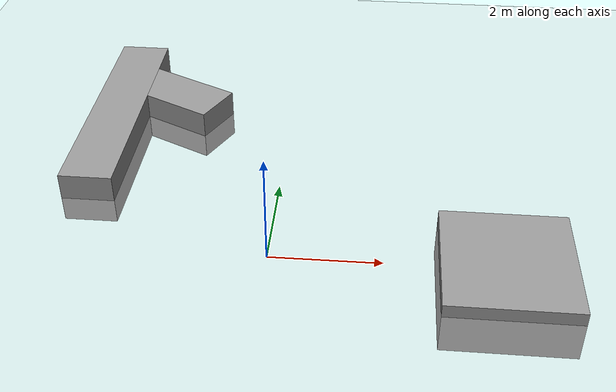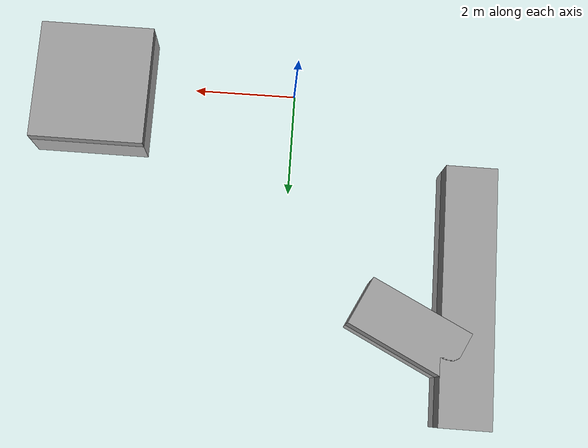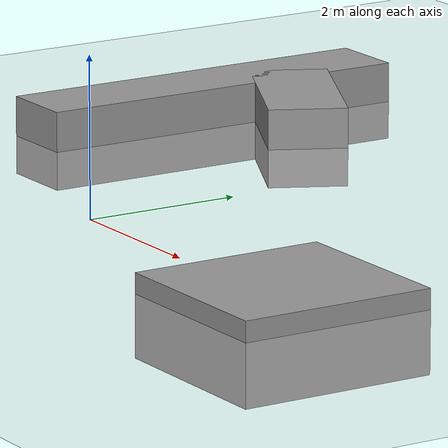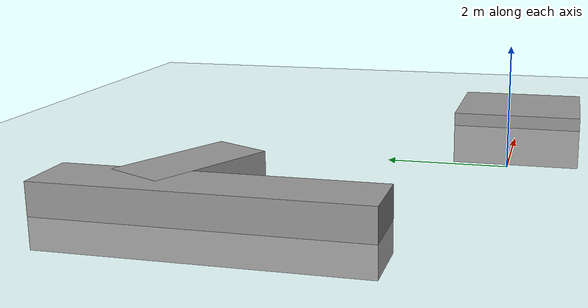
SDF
<sdf version="1.7">
 <world name="default">
  <scene><ambient>0.4 0.4 0.4 1</ambient><background>0.7 0.7 0.7 1</background><shadows>1</shadows></scene>
  <light name="sun" type="directional">
   <pose>0 0 10 0 -0 0</pose>
   <diffuse>0.8 0.8 0.8 1</diffuse>
   <specular>0.2 0.2 0.2 1</specular>
   <attenuation>
    <range>1000</range>
    <constant>0.9</constant>
    <linear>0.01</linear>
    <quadratic>0.001</quadratic>
   </attenuation>
   <direction>-0.5 0.1 -0.9</direction>
   <spot><inner_angle>0</inner_angle><outer_angle>0</outer_angle><falloff>0</falloff></spot>
  </light>
  <model name="ground_plane">
   <static>1</static>
   <link name="link">
    <collision name="collision">
     <geometry><plane><normal>0 0 1</normal><size>100 100</size></plane></geometry>
     <surface>
      <contact><collide_bitmask>65535</collide_bitmask></contact>
      <friction><ode><mu>100</mu><mu2>50</mu2></ode></friction>
     </surface>
    </collision>
    <visual name="visual">
     <cast_shadows>0</cast_shadows>
     <geometry><plane><normal>0 0 1</normal><size>100 100</size></plane></geometry>
     <material>
      <script><uri>file://media/materials/scripts/gazebo.material</uri><name>Gazebo/Grey</name></script>
     </material>
    </visual>
   </link>
  </model>
  <physics type="ode">
   <real_time_update_rate>1000</real_time_update_rate>
   <max_step_size>0.001</max_step_size>
   <real_time_factor>1</real_time_factor>
   <ode>
    <solver>
     <type>quick</type>
     <iters>150</iters>
     <precon_iters>0</precon_iters>
     <sor>1.4</sor>
     <use_dynamic_moi_rescaling>1</use_dynamic_moi_rescaling>
    </solver>
    <constraints>
     <cfm>1e-05</cfm>
     <erp>0.2</erp>
     <contact_max_correcting_vel>2000</contact_max_correcting_vel>
     <contact_surface_layer>0.01</contact_surface_layer>
    </constraints>
   </ode>
  </physics>
  <gravity>0 0 -9.8</gravity>
  <magnetic_field>6e-06 2.3e-05 -4.2e-05</magnetic_field>
  <atmosphere type="adiabatic"/>
  <spherical_coordinates>
   <surface_model>EARTH_WGS84</surface_model>
   <latitude_deg>0</latitude_deg>
   <longitude_deg>0</longitude_deg>
   <elevation>0</elevation>
   <heading_deg>0</heading_deg>
  </spherical_coordinates>
  <model name="unit_box">
   <link name="link">
    <inertial>
     <mass>4.97099</mass>
     <inertia><ixx>10.6507</ixx><ixy>0</ixy><ixz>0</ixz><iyy>0.828498</iyy><iyz>0</iyz><izz>10.6507</izz></inertia>
    </inertial>
    <visual name="visual">
     <geometry><box><size>1 4.97099 1</size></box></geometry>
     <material>
      <script><name>Gazebo/Grey</name><uri>file://media/materials/scripts/gazebo.material</uri></script>
      <shader type="pixel"/>
     </material>
    </visual>
    <collision name="collision">
     <geometry><box><size>1 4.97099 1</size></box></geometry>
     <surface>
      <friction>
       <ode><mu>1</mu><mu2>1</mu2><fdir1>0 0 0</fdir1><slip1>0</slip1><slip2>0</slip2></ode>
       <torsional>
        <coefficient>1</coefficient>
        <patch_radius>0</patch_radius>
        <surface_radius>0</surface_radius>
        <use_patch_radius>1</use_patch_radius>
        <ode><slip>0</slip></ode>
       </torsional>
      </friction>
      <bounce><restitution_coefficient>0</restitution_coefficient><threshold>1e+06</threshold></bounce>
      <contact>
       <collide_without_contact>0</collide_without_contact>
       <collide_without_contact_bitmask>1</collide_without_contact_bitmask>
       <collide_bitmask>1</collide_bitmask>
       <ode>
        <soft_cfm>0</soft_cfm>
        <soft_erp>0.2</soft_erp>
        <kp>1e+13</kp>
        <kd>1</kd>
        <max_vel>0.01</max_vel>
        <min_depth>0</min_depth>
       </ode>
       <bullet>
        <split_impulse>1</split_impulse>
        <split_impulse_penetration_threshold>-0.01</split_impulse_penetration_threshold>
        <soft_cfm>0</soft_cfm>
        <soft_erp>0.2</soft_erp>
        <kp>1e+13</kp>
        <kd>1</kd>
       </bullet>
      </contact>
     </surface>
    </collision>
   </link>
   <link name="link_0">
    <inertial>
     <mass>2.11281</mass>
     <inertia>
      <ixx>0.352135</ixx>
      <ixy>0</ixy>
      <ixz>0</ixz>
      <iyy>0.962029</iyy>
      <iyz>0</iyz>
      <izz>0.962029</izz>
     </inertia>
    </inertial>
    <pose>1.07296 0.713007 0 0 0 -0.460227</pose>
    <visual name="visual">
     <geometry><box><size>2.11281 1 1</size></box></geometry>
     <material>
      <lighting>1</lighting>
      <script><uri>file://media/materials/scripts/gazebo.material</uri><name>Gazebo/Grey</name></script>
      <shader type="pixel"/>
     </material>
    </visual>
    <collision name="collision">
     <geometry><box><size>2.11281 1 1</size></box></geometry>
     <surface>
      <friction>
       <ode><mu>1</mu><mu2>1</mu2><fdir1>0 0 0</fdir1><slip1>0</slip1><slip2>0</slip2></ode>
       <torsional>
        <coefficient>1</coefficient>
        <patch_radius>0</patch_radius>
        <surface_radius>0</surface_radius>
        <use_patch_radius>1</use_patch_radius>
        <ode><slip>0</slip></ode>
       </torsional>
      </friction>
      <bounce><restitution_coefficient>0</restitution_coefficient><threshold>1e+06</threshold></bounce>
      <contact>
       <collide_without_contact>0</collide_without_contact>
       <collide_without_contact_bitmask>1</collide_without_contact_bitmask>
       <collide_bitmask>1</collide_bitmask>
       <ode>
        <soft_cfm>0</soft_cfm>
        <soft_erp>0.2</soft_erp>
        <kp>1e+13</kp>
        <kd>1</kd>
        <max_vel>0.01</max_vel>
        <min_depth>0</min_depth>
       </ode>
       <bullet>
        <split_impulse>1</split_impulse>
        <split_impulse_penetration_threshold>-0.01</split_impulse_penetration_threshold>
        <soft_cfm>0</soft_cfm>
        <soft_erp>0.2</soft_erp>
        <kp>1e+13</kp>
        <kd>1</kd>
       </bullet>
      </contact>
     </surface>
    </collision>
   </link>
   <static>1</static>
   <pose>-3.51547 3.81059 0 0 -0 0</pose>
  </model>
  <model name="unit_boxf">
   <link name="link">
    <inertial>
     <mass>5.57222</mass>
     <inertia><ixx>3.20502</ixx><ixy>0</ixy><ixz>0</ixz><iyy>2.90723</iyy><iyz>0</iyz><izz>5.18355</izz></inertia>
    </inertial>
    <pose>0 0 -0.263559 0 -0 0</pose>
    <visual name="visual">
     <geometry><box><size>2.29365 2.42943 1</size></box></geometry>
     <material>
      <script><name>Gazebo/Grey</name><uri>file://media/materials/scripts/gazebo.material</uri></script>
      <shader type="pixel"/>
     </material>
    </visual>
    <collision name="collision">
     <geometry><box><size>2.29365 2.42943 1</size></box></geometry>
     <surface>
      <friction>
       <ode><mu>1</mu><mu2>1</mu2><fdir1>0 0 0</fdir1><slip1>0</slip1><slip2>0</slip2></ode>
       <torsional>
        <coefficient>1</coefficient>
        <patch_radius>0</patch_radius>
        <surface_radius>0</surface_radius>
        <use_patch_radius>1</use_patch_radius>
        <ode><slip>0</slip></ode>
       </torsional>
      </friction>
      <bounce><restitution_coefficient>0</restitution_coefficient><threshold>1e+06</threshold></bounce>
      <contact>
       <collide_without_contact>0</collide_without_contact>
       <collide_without_contact_bitmask>1</collide_without_contact_bitmask>
       <collide_bitmask>1</collide_bitmask>
       <ode>
        <soft_cfm>0</soft_cfm>
        <soft_erp>0.2</soft_erp>
        <kp>1e+13</kp>
        <kd>1</kd>
        <max_vel>0.01</max_vel>
        <min_depth>0</min_depth>
       </ode>
       <bullet>
        <split_impulse>1</split_impulse>
        <split_impulse_penetration_threshold>-0.01</split_impulse_penetration_threshold>
        <soft_cfm>0</soft_cfm>
        <soft_erp>0.2</soft_erp>
        <kp>1e+13</kp>
        <kd>1</kd>
       </bullet>
      </contact>
     </surface>
    </collision>
   </link>
   <static>1</static>
   <pose>4.09077 0.03342 -0 0 -0 0</pose>
  </model>
 </world>
</sdf>
